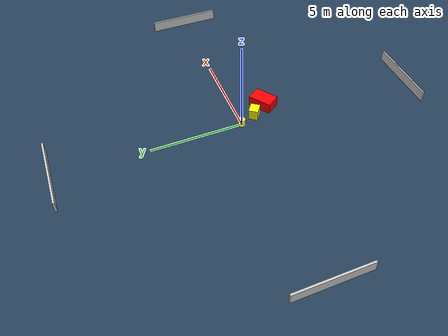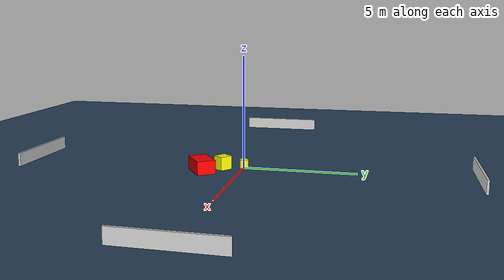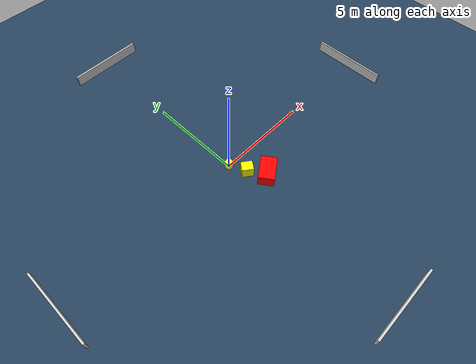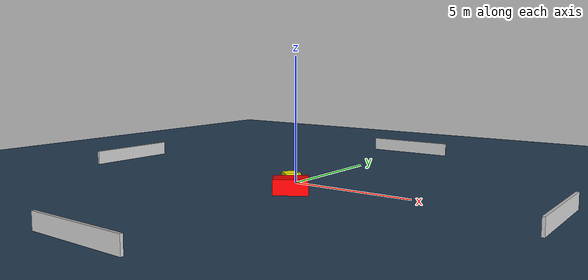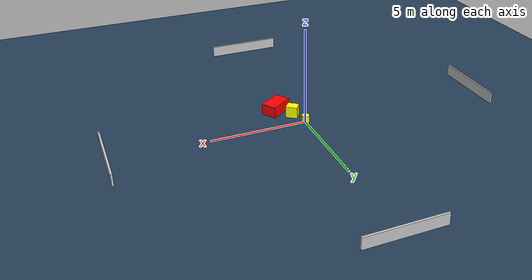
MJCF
<?xml version="1.0" ?>
<mujoco model="generated_environment">
  <option timestep="0.01" integrator="RK4" cone="elliptic"/>
  <default>
    <geom density="1"/>
  </default>
  <asset>
    <texture builtin="gradient" height="3072" name="skybox" rgb1="0.3 0.5 0.7" rgb2="0 0 0" type="skybox" width="512"/>
    <texture builtin="checker" height="300" name="groundplane" rgb1="0.2 0.3 0.4" rgb2="0.1 0.2 0.3" type="2d" width="300"/>
    <material name="groundplane" reflectance="0.2" texrepeat="5 5" texture="groundplane"/>
  </asset>
  <worldbody>
    <light dir="0 0 -1" directional="true" pos="0 0 1.5"/>
    <geom condim="3" friction="0.5 0.005 0.001" material="groundplane" name="floor" pos="0 0 0" size="0 0 0.05" type="plane"/>
    <body name="walls">
      <geom name="wall_1" condim="4" pos="-10.0 0.0 0.3" rgba="0.800000011920929 0.800000011920929 0.800000011920929 1.0" size="0.05 2.0 0.3" type="box"/>
      <geom name="wall_2" condim="4" pos="10.0 0.0 0.3" rgba="0.800000011920929 0.800000011920929 0.800000011920929 1.0" size="0.05 2.0 0.3" type="box"/>
      <geom name="wall_3" condim="4" pos="0.0 -10.0 0.3" rgba="0.800000011920929 0.800000011920929 0.800000011920929 1.0" size="2.0 0.05 0.3" type="box"/>
      <geom name="wall_4" condim="4" pos="0.0 10.0 0.3" rgba="0.800000011920929 0.800000011920929 0.800000011920929 1.0" size="2.0 0.05 0.3" type="box"/>
    </body>
    <body name="robot">
      <joint name="joint_x" type="slide" pos="0 0 0" axis="1 0 0"/>
      <joint name="joint_y" type="slide" pos="0 0 0" axis="0 1 0"/>
      <geom name="robot" type="cylinder" pos="0.0 0.0 0.2" size="0.2 0.2 0.0" mass="5.0" friction="1.0 0.005 0.0001" condim="4" rgba="1.0 1.0 0.0 1.0"/>
    </body>
    <body name="obstacle_1_movable">
      <geom name="obstacle_1_movable" condim="4" pos="0.3672327235630854 -0.8777507315967512 0.3" euler="0 0 144.0308373466582" friction="0.0 0.005 0.001" rgba="1.0 1.0 0.0 1.0" size="0.29749551922383743 0.2561864971568601 0.3" type="box" mass="0.1"/>
      <joint type="free"/>
    </body>
    <body name="obstacle_2_static">
      <geom name="obstacle_2_static" condim="4" pos="0.9966336880456356 -1.665648748044969 0.3" euler="0 0 214.95750136573608" friction="0.0 0.005 0.001" rgba="1.0 0.0 0.0 1.0" size="0.650779040449552 0.4123003750549358 0.3" type="box"/>
    </body>
  </worldbody>
  <actuator>
    <motor name="actuator_x" joint="joint_x" gear="1" ctrlrange="-1 1"/>
    <motor name="actuator_y" joint="joint_y" gear="1" ctrlrange="-1 1"/>
  </actuator>
</mujoco>
